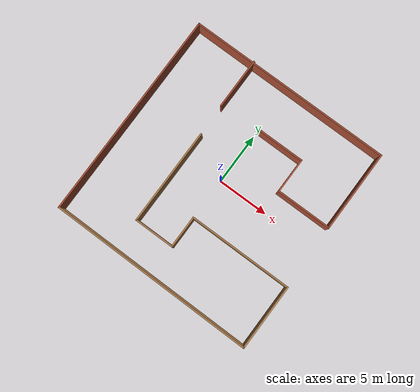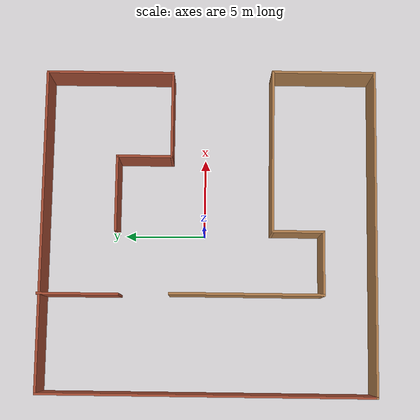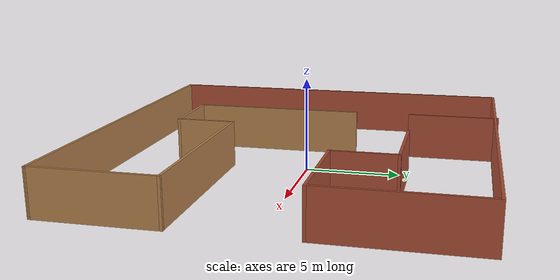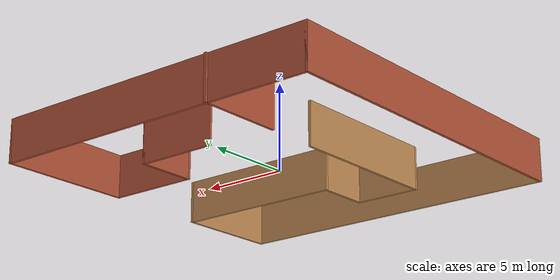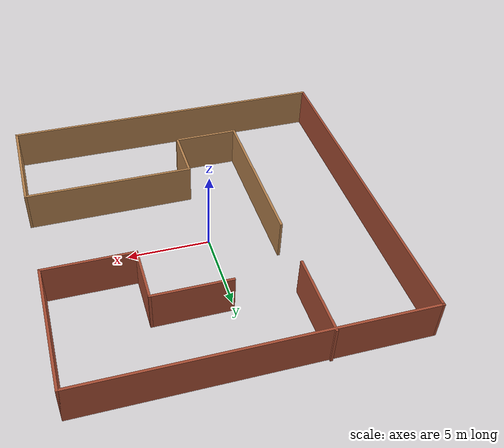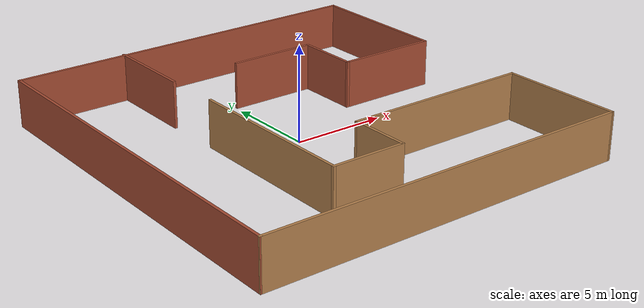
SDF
<?xml version='1.0'?>
<sdf version='1.7'>
  <model name='bongworld'>
    <pose>0.225731 -0.225938 0 0 -0 0</pose>
    <link name='Wall_22'>
      <collision name='Wall_22_Collision'>
        <geometry>
          <box>
            <size>20.1622 0.15 2.5</size>
          </box>
        </geometry>
        <pose>0 0 1.25 0 -0 0</pose>
      </collision>
      <visual name='Wall_22_Visual'>
        <pose>0 0 1.25 0 -0 0</pose>
        <geometry>
          <box>
            <size>20.1622 0.15 2.5</size>
          </box>
        </geometry>
        <material>
          <script>
            <uri>file://media/materials/scripts/gazebo.material</uri>
            <name>Gazebo/Wood</name>
          </script>
          <ambient>1 1 1 1</ambient>
        </material>
        <meta>
          <layer>0</layer>
        </meta>
      </visual>
      <pose>-0 -10.2319 0 0 -0 -0.006065</pose>
    </link>
    <link name='Wall_29'>
      <collision name='Wall_29_Collision'>
        <geometry>
          <box>
            <size>6.5 0.15 2.5</size>
          </box>
        </geometry>
        <pose>0 0 1.25 0 -0 0</pose>
      </collision>
      <visual name='Wall_29_Visual'>
        <pose>0 0 1.25 0 -0 0</pose>
        <geometry>
          <box>
            <size>6.5 0.15 2.5</size>
          </box>
        </geometry>
        <material>
          <script>
            <uri>file://media/materials/scripts/gazebo.material</uri>
            <name>Gazebo/Wood</name>
          </script>
          <ambient>1 1 1 1</ambient>
        </material>
        <meta>
          <layer>0</layer>
        </meta>
      </visual>
      <pose>10.0059 -7.11757 0 0 -0 1.5708</pose>
    </link>
    <link name='Wall_30'>
      <collision name='Wall_30_Collision'>
        <geometry>
          <box>
            <size>10.25 0.15 2.5</size>
          </box>
        </geometry>
        <pose>0 0 1.25 0 -0 0</pose>
      </collision>
      <visual name='Wall_30_Visual'>
        <pose>0 0 1.25 0 -0 0</pose>
        <geometry>
          <box>
            <size>10.25 0.15 2.5</size>
          </box>
        </geometry>
        <material>
          <script>
            <uri>file://media/materials/scripts/gazebo.material</uri>
            <name>Gazebo/Wood</name>
          </script>
          <ambient>1 1 1 1</ambient>
        </material>
        <meta>
          <layer>0</layer>
        </meta>
      </visual>
      <pose>4.95591 -3.94257 0 0 -0 3.14159</pose>
    </link>
    <link name='Wall_31'>
      <collision name='Wall_31_Collision'>
        <geometry>
          <box>
            <size>3.25 0.15 2.5</size>
          </box>
        </geometry>
        <pose>0 0 1.25 0 -0 0</pose>
      </collision>
      <visual name='Wall_31_Visual'>
        <pose>0 0 1.25 0 -0 0</pose>
        <geometry>
          <box>
            <size>3.25 0.15 2.5</size>
          </box>
        </geometry>
        <material>
          <script>
            <uri>file://media/materials/scripts/gazebo.material</uri>
            <name>Gazebo/Wood</name>
          </script>
          <ambient>1 1 1 1</ambient>
        </material>
        <meta>
          <layer>0</layer>
        </meta>
      </visual>
      <pose>-0.094089 -5.49257 0 0 -0 -1.5708</pose>
    </link>
    <link name='Wall_33'>
      <collision name='Wall_33_Collision'>
        <geometry>
          <box>
            <size>4 0.15 2.5</size>
          </box>
        </geometry>
        <pose>0 0 1.25 0 -0 0</pose>
      </collision>
      <visual name='Wall_33_Visual'>
        <pose>0 0 1.25 0 -0 0</pose>
        <geometry>
          <box>
            <size>4 0.15 2.5</size>
          </box>
        </geometry>
        <material>
          <script>
            <uri>file://media/materials/scripts/gazebo.material</uri>
            <name>Gazebo/Wood</name>
          </script>
          <ambient>1 1 1 1</ambient>
        </material>
        <meta>
          <layer>0</layer>
        </meta>
      </visual>
      <pose>-2.01909 -7.04257 0 0 -0 3.14159</pose>
    </link>
    <link name='Wall_35'>
      <collision name='Wall_35_Collision'>
        <geometry>
          <box>
            <size>9.5 0.15 2.5</size>
          </box>
        </geometry>
        <pose>0 0 1.25 0 -0 0</pose>
      </collision>
      <visual name='Wall_35_Visual'>
        <pose>0 0 1.25 0 -0 0</pose>
        <geometry>
          <box>
            <size>9.5 0.15 2.5</size>
          </box>
        </geometry>
        <material>
          <script>
            <uri>file://media/materials/scripts/gazebo.material</uri>
            <name>Gazebo/Wood</name>
          </script>
          <ambient>1 1 1 1</ambient>
        </material>
        <meta>
          <layer>0</layer>
        </meta>
      </visual>
      <pose>-3.94409 -2.36757 0 0 -0 1.5708</pose>
    </link>
    <link name='Wall_39'>
      <collision name='Wall_39_Collision'>
        <geometry>
          <box>
            <size>20.5 0.15 2.5</size>
          </box>
        </geometry>
        <pose>0 0 1.25 0 -0 0</pose>
      </collision>
      <visual name='Wall_39_Visual'>
        <pose>0 0 1.25 0 -0 0</pose>
        <geometry>
          <box>
            <size>20.5 0.15 2.5</size>
          </box>
        </geometry>
        <material>
          <script>
            <uri>file://media/materials/scripts/gazebo.material</uri>
            <name>Gazebo/Bricks</name>
          </script>
          <ambient>1 1 1 1</ambient>
        </material>
        <meta>
          <layer>0</layer>
        </meta>
      </visual>
      <pose>-10.0059 0.003801 0 0 -0 1.5708</pose>
    </link>
    <link name='Wall_40'>
      <collision name='Wall_40_Collision'>
        <geometry>
          <box>
            <size>20 0.15 2.5</size>
          </box>
        </geometry>
        <pose>0 0 1.25 0 -0 0</pose>
      </collision>
      <visual name='Wall_40_Visual'>
        <pose>0 0 1.25 0 -0 0</pose>
        <geometry>
          <box>
            <size>20 0.15 2.5</size>
          </box>
        </geometry>
        <material>
          <script>
            <uri>file://media/materials/scripts/gazebo.material</uri>
            <name>Gazebo/Bricks</name>
          </script>
          <ambient>1 1 1 1</ambient>
        </material>
        <meta>
          <layer>0</layer>
        </meta>
      </visual>
      <pose>-0.080911 10.1788 0 0 -0 0</pose>
    </link>
    <link name='Wall_41'>
      <collision name='Wall_41_Collision'>
        <geometry>
          <box>
            <size>8 0.15 2.5</size>
          </box>
        </geometry>
        <pose>0 0 1.25 0 -0 0</pose>
      </collision>
      <visual name='Wall_41_Visual'>
        <pose>0 0 1.25 0 -0 0</pose>
        <geometry>
          <box>
            <size>8 0.15 2.5</size>
          </box>
        </geometry>
        <material>
          <script>
            <uri>file://media/materials/scripts/gazebo.material</uri>
            <name>Gazebo/Bricks</name>
          </script>
          <ambient>1 1 1 1</ambient>
        </material>
        <meta>
          <layer>0</layer>
        </meta>
      </visual>
      <pose>9.84409 6.2538 0 0 -0 -1.5708</pose>
    </link>
    <link name='Wall_42'>
      <collision name='Wall_42_Collision'>
        <geometry>
          <box>
            <size>5.5 0.15 2.5</size>
          </box>
        </geometry>
        <pose>0 0 1.25 0 -0 0</pose>
      </collision>
      <visual name='Wall_42_Visual'>
        <pose>0 0 1.25 0 -0 0</pose>
        <geometry>
          <box>
            <size>5.5 0.15 2.5</size>
          </box>
        </geometry>
        <material>
          <script>
            <uri>file://media/materials/scripts/gazebo.material</uri>
            <name>Gazebo/Bricks</name>
          </script>
          <ambient>1 1 1 1</ambient>
        </material>
        <meta>
          <layer>0</layer>
        </meta>
      </visual>
      <pose>7.16909 2.3288 0 0 -0 3.14159</pose>
    </link>
    <link name='Wall_43'>
      <collision name='Wall_43_Collision'>
        <geometry>
          <box>
            <size>3.5 0.15 2.5</size>
          </box>
        </geometry>
        <pose>0 0 1.25 0 -0 0</pose>
      </collision>
      <visual name='Wall_43_Visual'>
        <pose>0 0 1.25 0 -0 0</pose>
        <geometry>
          <box>
            <size>3.5 0.15 2.5</size>
          </box>
        </geometry>
        <material>
          <script>
            <uri>file://media/materials/scripts/gazebo.material</uri>
            <name>Gazebo/Bricks</name>
          </script>
          <ambient>1 1 1 1</ambient>
        </material>
        <meta>
          <layer>0</layer>
        </meta>
      </visual>
      <pose>4.49409 4.0038 0 0 -0 1.5708</pose>
    </link>
    <link name='Wall_44'>
      <collision name='Wall_44_Collision'>
        <geometry>
          <box>
            <size>4.75 0.15 2.5</size>
          </box>
        </geometry>
        <pose>0 0 1.25 0 -0 0</pose>
      </collision>
      <visual name='Wall_44_Visual'>
        <pose>0 0 1.25 0 -0 0</pose>
        <geometry>
          <box>
            <size>4.75 0.15 2.5</size>
          </box>
        </geometry>
        <material>
          <script>
            <uri>file://media/materials/scripts/gazebo.material</uri>
            <name>Gazebo/Bricks</name>
          </script>
          <ambient>1 1 1 1</ambient>
        </material>
        <meta>
          <layer>0</layer>
        </meta>
      </visual>
      <pose>2.19409 5.6788 0 0 -0 3.14159</pose>
    </link>
    <link name='Wall_46'>
      <collision name='Wall_46_Collision'>
        <geometry>
          <box>
            <size>5 0.15 2.5</size>
          </box>
        </geometry>
        <pose>0 0 1.25 0 -0 0</pose>
      </collision>
      <visual name='Wall_46_Visual'>
        <pose>0 0 1.25 0 -0 0</pose>
        <geometry>
          <box>
            <size>5 0.15 2.5</size>
          </box>
        </geometry>
        <material>
          <script>
            <uri>file://media/materials/scripts/gazebo.material</uri>
            <name>Gazebo/Bricks</name>
          </script>
          <ambient>1 1 1 1</ambient>
        </material>
        <meta>
          <layer>0</layer>
        </meta>
      </visual>
      <pose>-4.04268 7.86802 0 0 -0 -1.5708</pose>
    </link>
    <static>1</static>
  </model>
</sdf>
